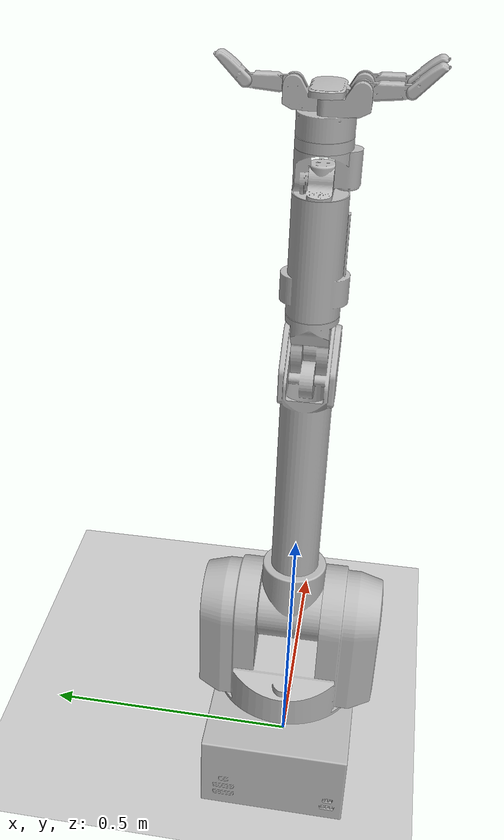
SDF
<sdf version="1.7">
 <world name="default">
  <light name="sun" type="directional">
   <pose>0 0 10 0 -0 0</pose>
   <diffuse>0.8 0.8 0.8 1</diffuse>
   <specular>0.2 0.2 0.2 1</specular>
   <attenuation>
    <range>1000</range>
    <constant>0.9</constant>
    <linear>0.01</linear>
    <quadratic>0.001</quadratic>
   </attenuation>
   <direction>-0.5 0.1 -0.9</direction>
   <spot><inner_angle>0</inner_angle><outer_angle>0</outer_angle><falloff>0</falloff></spot>
  </light>
  <model name="ground_plane">
   <static>1</static>
   <link name="link">
    <collision name="collision">
     <geometry><plane><normal>0 0 1</normal><size>100 100</size></plane></geometry>
     <surface><friction><ode><mu>100</mu><mu2>50</mu2></ode></friction></surface>
    </collision>
    <visual name="visual">
     <cast_shadows>0</cast_shadows>
     <geometry><plane><normal>0 0 1</normal><size>100 100</size></plane></geometry>
     <material>
      <script><uri>file://media/materials/scripts/gazebo.material</uri><name>Gazebo/Grey</name></script>
     </material>
    </visual>
   </link>
  </model>
  <gravity>0 0 -9.8</gravity>
  <magnetic_field>6e-06 2.3e-05 -4.2e-05</magnetic_field>
  <atmosphere type="adiabatic"/>
  <physics type="ode">
   <max_step_size>0.001</max_step_size>
   <real_time_factor>1</real_time_factor>
   <real_time_update_rate>1000</real_time_update_rate>
  </physics>
  <scene><ambient>0.4 0.4 0.4 1</ambient><background>0.7 0.7 0.7 1</background><shadows>1</shadows></scene>
  <spherical_coordinates>
   <surface_model>EARTH_WGS84</surface_model>
   <latitude_deg>0</latitude_deg>
   <longitude_deg>0</longitude_deg>
   <elevation>0</elevation>
   <heading_deg>0</heading_deg>
  </spherical_coordinates>
  <model name="trial0">
   <joint name="wam/wam_fixed_joint" type="fixed">
    <pose relative_to="__model__">0 0 1 0 -0 0</pose>
    <parent>world</parent>
    <child>wam/base_link</child>
   </joint>
   <link name="wam/base_link">
    <pose relative_to="wam/wam_fixed_joint">0 0 0 0 -0 0</pose>
    <inertial>
     <mass>1</mass>
     <inertia><ixx>0.1</ixx><ixy>0</ixy><ixz>0</ixz><iyy>0.1</iyy><iyz>0</iyz><izz>0.1</izz></inertia>
    </inertial>
    <collision name="wam/base_link_collision">
     <geometry>
      <mesh>
       <scale>1 1 1</scale>
       <uri>/home/nckmlb/nuws/src/barrett_ros_arms_test/barrett_model/models/sw_meshes/base_link_convex.dae</uri>
      </mesh>
     </geometry>
    </collision>
    <visual name="wam/base_link_visual">
     <geometry>
      <mesh>
       <scale>1 1 1</scale>
       <uri>/home/nckmlb/nuws/src/barrett_ros_arms_test/barrett_model/models/sw_meshes/base_link_fine.stl</uri>
      </mesh>
     </geometry>
    </visual>
   </link>
   <joint name="wam/base_yaw_joint" type="revolute">
    <pose relative_to="wam/base_link">0 0 0.346 0 -0 0</pose>
    <parent>wam/base_link</parent>
    <child>wam/shoulder_yaw_link</child>
    <axis>
     <xyz>0 0 1</xyz>
     <limit><lower>-2.6</lower><upper>2.6</upper><effort>60</effort><velocity>2</velocity></limit>
     <dynamics>
      <damping>1.98</damping>
      <friction>0</friction>
      <spring_reference>0</spring_reference>
      <spring_stiffness>0</spring_stiffness>
     </dynamics>
    </axis>
    <physics>
     <provide_feedback>1</provide_feedback>
     <ode>
      <implicit_spring_damper>1</implicit_spring_damper>
      <cfm_damping>1</cfm_damping>
      <limit><cfm>0</cfm><erp>0.2</erp></limit>
      <provide_feedback>1</provide_feedback>
     </ode>
    </physics>
   </joint>
   <link name="wam/shoulder_yaw_link">
    <pose relative_to="wam/base_yaw_joint">0 0 0 0 -0 0</pose>
    <inertial>
     <pose>-0.004434 -0.000665 -0.128904 0 -0 0</pose>
     <mass>5</mass>
     <inertia>
      <ixx>0.13488</ixx>
      <ixy>-0.00012485</ixy>
      <ixz>0.00213041</ixz>
      <iyy>0.0904633</iyy>
      <iyz>-0.00068555</iyz>
      <izz>0.113284</izz>
     </inertia>
    </inertial>
    <collision name="wam/shoulder_yaw_link_collision">
     <geometry>
      <mesh>
       <scale>1 1 1</scale>
       <uri>/home/nckmlb/nuws/src/barrett_ros_arms_test/barrett_model/models/sw_meshes/shoulder_link_convex_decomposition.dae</uri>
      </mesh>
     </geometry>
    </collision>
    <visual name="wam/shoulder_yaw_link_visual">
     <geometry>
      <mesh>
       <scale>1 1 1</scale>
       <uri>/home/nckmlb/nuws/src/barrett_ros_arms_test/barrett_model/models/sw_meshes/shoulder_link_fine.stl</uri>
      </mesh>
     </geometry>
    </visual>
   </link>
   <joint name="wam/shoulder_pitch_joint" type="revolute">
    <pose relative_to="wam/shoulder_yaw_link">0 0 0 -1.5708 0 0</pose>
    <parent>wam/shoulder_yaw_link</parent>
    <child>wam/shoulder_pitch_link</child>
    <axis>
     <xyz>0 0 1</xyz>
     <limit><lower>-1.985</lower><upper>1.985</upper><effort>60</effort><velocity>2</velocity></limit>
     <dynamics>
      <damping>0.55</damping>
      <friction>0</friction>
      <spring_reference>0</spring_reference>
      <spring_stiffness>0</spring_stiffness>
     </dynamics>
    </axis>
    <physics>
     <provide_feedback>1</provide_feedback>
     <ode>
      <implicit_spring_damper>1</implicit_spring_damper>
      <cfm_damping>1</cfm_damping>
      <limit><cfm>0</cfm><erp>0.2</erp></limit>
      <provide_feedback>1</provide_feedback>
     </ode>
    </physics>
   </joint>
   <link name="wam/shoulder_pitch_link">
    <pose relative_to="wam/shoulder_pitch_joint">0 0 0 0 -0 0</pose>
    <inertial>
     <pose>-0.00237 -0.015421 0.031056 0 -0 0</pose>
     <mass>3.87494</mass>
     <inertia>
      <ixx>0.0214096</ixx>
      <ixy>-2.461e-05</ixy>
      <ixz>0.00027172</ixz>
      <iyy>0.0155891</iyy>
      <iyz>0.0018192</iyz>
      <izz>0.0137787</izz>
     </inertia>
    </inertial>
    <collision name="wam/shoulder_pitch_link_collision">
     <geometry>
      <mesh>
       <scale>1 1 1</scale>
       <uri>/home/nckmlb/nuws/src/barrett_ros_arms_test/barrett_model/models/sw_meshes/shoulder_pitch_link_convex.dae</uri>
      </mesh>
     </geometry>
    </collision>
    <visual name="wam/shoulder_pitch_link_visual">
     <geometry>
      <mesh>
       <scale>1 1 1</scale>
       <uri>/home/nckmlb/nuws/src/barrett_ros_arms_test/barrett_model/models/sw_meshes/shoulder_pitch_link_fine.stl</uri>
      </mesh>
     </geometry>
    </visual>
   </link>
   <joint name="wam/shoulder_yaw_joint" type="revolute">
    <pose relative_to="wam/shoulder_pitch_link">0 0 0 1.5708 -0 0</pose>
    <parent>wam/shoulder_pitch_link</parent>
    <child>wam/upper_arm_link</child>
    <axis>
     <xyz>0 0 1</xyz>
     <limit><lower>-2.8</lower><upper>2.8</upper><effort>45</effort><velocity>2</velocity></limit>
     <dynamics>
      <damping>1.65</damping>
      <friction>0</friction>
      <spring_reference>0</spring_reference>
      <spring_stiffness>0</spring_stiffness>
     </dynamics>
    </axis>
    <physics>
     <provide_feedback>1</provide_feedback>
     <ode>
      <implicit_spring_damper>1</implicit_spring_damper>
      <cfm_damping>1</cfm_damping>
      <limit><cfm>0</cfm><erp>0.2</erp></limit>
      <provide_feedback>1</provide_feedback>
     </ode>
    </physics>
   </joint>
   <link name="wam/upper_arm_link">
    <pose relative_to="wam/shoulder_yaw_joint">0 0 0 0 -0 0</pose>
    <inertial>
     <pose>0.006833 3.3e-05 0.392492 0 -0 0</pose>
     <mass>2.20228</mass>
     <inertia>
      <ixx>0.0591108</ixx>
      <ixy>-7.38e-06</ixy>
      <ixz>-0.00249612</ixz>
      <iyy>0.0592704</iyy>
      <iyz>1.767e-05</iyz>
      <izz>0.0032455</izz>
     </inertia>
    </inertial>
    <collision name="wam/upper_arm_link_collision">
     <geometry>
      <mesh>
       <scale>1 1 1</scale>
       <uri>/home/nckmlb/nuws/src/barrett_ros_arms_test/barrett_model/models/sw_meshes/upper_arm_link_convex_decomposition.dae</uri>
      </mesh>
     </geometry>
    </collision>
    <visual name="wam/upper_arm_link_visual">
     <geometry>
      <mesh>
       <scale>1 1 1</scale>
       <uri>/home/nckmlb/nuws/src/barrett_ros_arms_test/barrett_model/models/sw_meshes/upper_arm_link_fine.stl</uri>
      </mesh>
     </geometry>
    </visual>
   </link>
   <joint name="wam/elbow_pitch_joint" type="revolute">
    <pose relative_to="wam/upper_arm_link">0.045 0 0.55 -1.5708 0 0</pose>
    <parent>wam/upper_arm_link</parent>
    <child>wam/forearm_link</child>
    <axis>
     <xyz>0 0 1</xyz>
     <limit><lower>-0.9</lower><upper>3.14159</upper><effort>30</effort><velocity>2</velocity></limit>
     <dynamics>
      <damping>0.88</damping>
      <friction>0</friction>
      <spring_reference>0</spring_reference>
      <spring_stiffness>0</spring_stiffness>
     </dynamics>
    </axis>
    <physics>
     <provide_feedback>1</provide_feedback>
     <ode>
      <implicit_spring_damper>1</implicit_spring_damper>
      <cfm_damping>1</cfm_damping>
      <limit><cfm>0</cfm><erp>0.2</erp></limit>
      <provide_feedback>1</provide_feedback>
     </ode>
    </physics>
   </joint>
   <link name="wam/forearm_link">
    <pose relative_to="wam/elbow_pitch_joint">0 0 0 0 -0 0</pose>
    <inertial>
     <pose>-0.040015 -0.142717 -0.000229 0 -0 0</pose>
     <mass>0.500168</mass>
     <inertia>
      <ixx>0.0149167</ixx>
      <ixy>0.00150604</ixy>
      <ixz>1.741e-05</ixz>
      <iyy>0.00294463</iyy>
      <iyz>2.109e-05</iyz>
      <izz>0.0148299</izz>
     </inertia>
    </inertial>
    <collision name="wam/forearm_link_collision">
     <geometry>
      <mesh>
       <scale>1 1 1</scale>
       <uri>/home/nckmlb/nuws/src/barrett_ros_arms_test/barrett_model/models/sw_meshes/elbow_link_convex.dae</uri>
      </mesh>
     </geometry>
    </collision>
    <collision name="wam/forearm_link_collision_1">
     <pose>-0.045 -0.073 0 1.5708 -0 0</pose>
     <geometry>
      <mesh>
       <scale>1 1 1</scale>
       <uri>/home/nckmlb/nuws/src/barrett_ros_arms_test/barrett_model/models/sw_meshes/forearm_link_convex_decomposition.dae</uri>
      </mesh>
     </geometry>
    </collision>
    <visual name="wam/forearm_link_visual">
     <geometry>
      <mesh>
       <scale>1 1 1</scale>
       <uri>/home/nckmlb/nuws/src/barrett_ros_arms_test/barrett_model/models/sw_meshes/elbow_link_fine.stl</uri>
      </mesh>
     </geometry>
    </visual>
    <visual name="wam/forearm_link_visual_1">
     <pose>-0.045 -0.073 0 1.5708 -0 0</pose>
     <geometry>
      <mesh>
       <scale>1 1 1</scale>
       <uri>/home/nckmlb/nuws/src/barrett_ros_arms_test/barrett_model/models/sw_meshes/forearm_link_fine.stl</uri>
      </mesh>
     </geometry>
    </visual>
   </link>
   <joint name="wam/wrist_yaw_joint" type="revolute">
    <pose relative_to="wam/forearm_link">-0.045 -0.3 0 1.5708 -0 0</pose>
    <parent>wam/forearm_link</parent>
    <child>wam/wrist_yaw_link</child>
    <axis>
     <xyz>0 0 1</xyz>
     <limit><lower>-4.55</lower><upper>1.25</upper><effort>10</effort><velocity>2</velocity></limit>
     <dynamics>
      <damping>0.55</damping>
      <friction>0</friction>
      <spring_reference>0</spring_reference>
      <spring_stiffness>0</spring_stiffness>
     </dynamics>
    </axis>
    <physics>
     <provide_feedback>1</provide_feedback>
     <ode>
      <implicit_spring_damper>1</implicit_spring_damper>
      <cfm_damping>1</cfm_damping>
      <limit><cfm>0</cfm><erp>0.2</erp></limit>
      <provide_feedback>1</provide_feedback>
     </ode>
    </physics>
   </joint>
   <link name="wam/wrist_yaw_link">
    <pose relative_to="wam/wrist_yaw_joint">0 0 0 0 -0 0</pose>
    <inertial>
     <pose>8.9e-05 0.004358 -0.005112 0 -0 0</pose>
     <mass>1.05376</mass>
     <inertia>
      <ixx>5.029e-05</ixx>
      <ixy>2e-07</ixy>
      <ixz>7.582e-05</ixz>
      <iyy>7.582e-05</iyy>
      <iyz>-3.59e-06</iyz>
      <izz>6.27e-05</izz>
     </inertia>
    </inertial>
    <collision name="wam/wrist_yaw_link_collision">
     <geometry>
      <mesh>
       <scale>1 1 1</scale>
       <uri>/home/nckmlb/nuws/src/barrett_ros_arms_test/barrett_model/models/sw_meshes/wrist_yaw_link_convex_decomposition.dae</uri>
      </mesh>
     </geometry>
    </collision>
    <visual name="wam/wrist_yaw_link_visual">
     <geometry>
      <mesh>
       <scale>1 1 1</scale>
       <uri>/home/nckmlb/nuws/src/barrett_ros_arms_test/barrett_model/models/sw_meshes/wrist_yaw_link_fine.stl</uri>
      </mesh>
     </geometry>
    </visual>
   </link>
   <joint name="wam/wrist_pitch_joint" type="revolute">
    <pose relative_to="wam/wrist_yaw_link">0 0 0 -1.5708 0 0</pose>
    <parent>wam/wrist_yaw_link</parent>
    <child>wam/wrist_pitch_link</child>
    <axis>
     <xyz>0 0 1</xyz>
     <limit><lower>-1.5707</lower><upper>1.5707</upper><effort>10</effort><velocity>2</velocity></limit>
     <dynamics>
      <damping>0.11</damping>
      <friction>0</friction>
      <spring_reference>0</spring_reference>
      <spring_stiffness>0</spring_stiffness>
     </dynamics>
    </axis>
    <physics>
     <provide_feedback>1</provide_feedback>
     <ode>
      <implicit_spring_damper>1</implicit_spring_damper>
      <cfm_damping>1</cfm_damping>
      <limit><cfm>0</cfm><erp>0.2</erp></limit>
      <provide_feedback>1</provide_feedback>
     </ode>
    </physics>
   </joint>
   <link name="wam/wrist_pitch_link">
    <pose relative_to="wam/wrist_pitch_joint">0 0 0 0 -0 0</pose>
    <inertial>
     <pose>-0.000123 -0.024683 -0.017032 0 -0 0</pose>
     <mass>0.517974</mass>
     <inertia>
      <ixx>0.00055516</ixx>
      <ixy>6.1e-07</ixy>
      <ixz>-7.4e-07</ixz>
      <iyy>0.00024367</iyy>
      <iyz>-4.59e-05</iyz>
      <izz>0.00045358</izz>
     </inertia>
    </inertial>
    <collision name="wam/wrist_pitch_link_collision">
     <geometry>
      <mesh>
       <scale>1 1 1</scale>
       <uri>/home/nckmlb/nuws/src/barrett_ros_arms_test/barrett_model/models/sw_meshes/wrist_pitch_link_convex_decomposition.dae</uri>
      </mesh>
     </geometry>
    </collision>
    <visual name="wam/wrist_pitch_link_visual">
     <geometry>
      <mesh>
       <scale>1 1 1</scale>
       <uri>/home/nckmlb/nuws/src/barrett_ros_arms_test/barrett_model/models/sw_meshes/wrist_pitch_link_fine.stl</uri>
      </mesh>
     </geometry>
    </visual>
   </link>
   <joint name="wam/palm_yaw_joint" type="revolute">
    <pose relative_to="wam/wrist_pitch_link">0 0 0 1.5708 -0 0</pose>
    <parent>wam/wrist_pitch_link</parent>
    <child>wam/wrist_palm_link</child>
    <axis>
     <xyz>0 0 1</xyz>
     <limit><lower>-3</lower><upper>3</upper><effort>10</effort><velocity>2</velocity></limit>
     <dynamics>
      <damping>0.11</damping>
      <friction>0</friction>
      <spring_reference>0</spring_reference>
      <spring_stiffness>0</spring_stiffness>
     </dynamics>
    </axis>
    <physics>
     <provide_feedback>1</provide_feedback>
     <ode>
      <implicit_spring_damper>1</implicit_spring_damper>
      <cfm_damping>1</cfm_damping>
      <limit><cfm>0</cfm><erp>0.2</erp></limit>
      <provide_feedback>1</provide_feedback>
     </ode>
    </physics>
   </joint>
   <link name="wam/wrist_palm_link">
    <pose relative_to="wam/palm_yaw_joint">0 0 0 0 -0 0</pose>
    <inertial>
     <pose>-4.4e-05 0.004333 0.090805 0 -0 0</pose>
     <mass>0.588594</mass>
     <inertia>
      <ixx>0.000274516</ixx>
      <ixy>-3.7692e-08</ixy>
      <ixz>-4.18824e-05</ixz>
      <iyy>0.000556622</iyy>
      <iyz>-1.48293e-05</iyz>
      <izz>0.000312871</izz>
     </inertia>
    </inertial>
    <collision name="wam/wrist_palm_link_collision">
     <geometry>
      <mesh>
       <scale>1 1 1</scale>
       <uri>/home/nckmlb/nuws/src/barrett_ros_arms_test/barrett_model/models/sw_meshes/wrist_palm_link_convex.dae</uri>
      </mesh>
     </geometry>
    </collision>
    <collision name="wam/wrist_palm_link_fixed_joint_lump__wam/bhand/bhand_palm_link_collision_1">
     <pose>0 0 0.06 0 -0 0</pose>
     <geometry>
      <mesh>
       <scale>1 1 1</scale>
       <uri>/home/nckmlb/nuws/src/barrett_ros_arms_test/barrett_model/models/sw_meshes/bhand/bhand_palm_link_convex_decomposition.dae</uri>
      </mesh>
     </geometry>
     <surface><friction><ode><mu>0.8</mu><mu2>0.8</mu2></ode></friction></surface>
    </collision>
    <visual name="wam/wrist_palm_link_visual">
     <geometry>
      <mesh>
       <scale>1 1 1</scale>
       <uri>/home/nckmlb/nuws/src/barrett_ros_arms_test/barrett_model/models/sw_meshes/wrist_palm_link_fine.stl</uri>
      </mesh>
     </geometry>
    </visual>
    <visual name="wam/wrist_palm_link_fixed_joint_lump__wam/bhand/bhand_palm_link_visual_1">
     <pose>0 0 0.06 0 -0 0</pose>
     <geometry>
      <mesh>
       <scale>1 1 1</scale>
       <uri>/home/nckmlb/nuws/src/barrett_ros_arms_test/barrett_model/models/sw_meshes/bhand/bhand_palm_fine.stl</uri>
      </mesh>
     </geometry>
    </visual>
   </link>
   <joint name="wam/bhand/finger_1/prox_joint" type="revolute">
    <pose relative_to="wam/wrist_palm_link">-0.025 0 0.1015 0 0 -1.5708</pose>
    <parent>wam/wrist_palm_link</parent>
    <child>wam/bhand/finger_1/prox_link</child>
    <axis>
     <xyz>0 0 -1</xyz>
     <limit><lower>0</lower><upper>3.14159</upper><effort>5</effort><velocity>5</velocity></limit>
     <dynamics>
      <damping>0.11</damping>
      <friction>0</friction>
      <spring_reference>0</spring_reference>
      <spring_stiffness>0</spring_stiffness>
     </dynamics>
    </axis>
    <physics>
     <provide_feedback>1</provide_feedback>
     <ode>
      <implicit_spring_damper>1</implicit_spring_damper>
      <cfm_damping>1</cfm_damping>
      <limit><cfm>0</cfm><erp>0.2</erp></limit>
      <provide_feedback>1</provide_feedback>
     </ode>
    </physics>
   </joint>
   <link name="wam/bhand/finger_1/prox_link">
    <pose relative_to="wam/bhand/finger_1/prox_joint">0 0 0 0 -0 0</pose>
    <inertial>
     <pose>0.023133 0.000786 0.000528 0 -0 0</pose>
     <mass>0.14109</mass>
     <inertia>
      <ixx>4.872e-06</ixx>
      <ixy>1.7103e-06</ixy>
      <ixz>3.4041e-08</ixz>
      <iyy>7.6588e-05</iyy>
      <iyz>2.3133e-08</iyz>
      <izz>7.7733e-05</izz>
     </inertia>
    </inertial>
    <collision name="wam/bhand/finger_1/prox_link_collision">
     <geometry>
      <mesh>
       <scale>1 1 1</scale>
       <uri>/home/nckmlb/nuws/src/barrett_ros_arms_test/barrett_model/models/sw_meshes/bhand/bhand_finger_prox_link_convex_decomposition.dae</uri>
      </mesh>
     </geometry>
     <surface><friction><ode><mu>0.8</mu><mu2>0.8</mu2></ode></friction></surface>
    </collision>
    <visual name="wam/bhand/finger_1/prox_link_visual">
     <geometry>
      <mesh>
       <scale>1 1 1</scale>
       <uri>/home/nckmlb/nuws/src/barrett_ros_arms_test/barrett_model/models/sw_meshes/bhand/bhand_finger_prox_link_fine.stl</uri>
      </mesh>
     </geometry>
    </visual>
   </link>
   <joint name="wam/bhand/finger_1/med_joint" type="revolute">
    <pose relative_to="wam/bhand/finger_1/prox_link">0.05 0 0.0339 1.5708 -0 0</pose>
    <parent>wam/bhand/finger_1/prox_link</parent>
    <child>wam/bhand/finger_1/med_link</child>
    <axis>
     <xyz>0 0 1</xyz>
     <limit><lower>0</lower><upper>2.44346</upper><effort>5</effort><velocity>5</velocity></limit>
     <dynamics>
      <damping>0.11</damping>
      <friction>0</friction>
      <spring_reference>0</spring_reference>
      <spring_stiffness>0</spring_stiffness>
     </dynamics>
    </axis>
    <physics>
     <provide_feedback>1</provide_feedback>
     <ode>
      <implicit_spring_damper>1</implicit_spring_damper>
      <cfm_damping>1</cfm_damping>
      <limit><cfm>0</cfm><erp>0.2</erp></limit>
      <provide_feedback>1</provide_feedback>
     </ode>
    </physics>
   </joint>
   <link name="wam/bhand/finger_1/med_link">
    <pose relative_to="wam/bhand/finger_1/med_joint">0 0 0 0 -0 0</pose>
    <inertial>
     <pose>0.023133 0.000786 0.000528 0 -0 0</pose>
     <mass>0.062139</mass>
     <inertia>
      <ixx>4.872e-06</ixx>
      <ixy>1.7103e-06</ixy>
      <ixz>3.4041e-08</ixz>
      <iyy>7.6588e-05</iyy>
      <iyz>2.3133e-08</iyz>
      <izz>7.7733e-05</izz>
     </inertia>
    </inertial>
    <collision name="wam/bhand/finger_1/med_link_collision">
     <geometry>
      <mesh>
       <scale>1 1 1</scale>
       <uri>/home/nckmlb/nuws/src/barrett_ros_arms_test/barrett_model/models/sw_meshes/bhand/bhand_finger_med_link_convex.dae</uri>
      </mesh>
     </geometry>
     <surface><friction><ode><mu>0.8</mu><mu2>0.8</mu2></ode></friction></surface>
    </collision>
    <visual name="wam/bhand/finger_1/med_link_visual">
     <geometry>
      <mesh>
       <scale>1 1 1</scale>
       <uri>/home/nckmlb/nuws/src/barrett_ros_arms_test/barrett_model/models/sw_meshes/bhand/bhand_finger_med_link_fine.stl</uri>
      </mesh>
     </geometry>
    </visual>
   </link>
   <joint name="wam/bhand/finger_1/dist_joint" type="revolute">
    <pose relative_to="wam/bhand/finger_1/med_link">0.06994 0.003 0 0 -0 0.785398</pose>
    <parent>wam/bhand/finger_1/med_link</parent>
    <child>wam/bhand/finger_1/dist_link</child>
    <axis>
     <xyz>0 0 1</xyz>
     <limit><lower>0</lower><upper>0.837758</upper><effort>5</effort><velocity>5</velocity></limit>
     <dynamics>
      <damping>0.11</damping>
      <friction>0</friction>
      <spring_reference>0</spring_reference>
      <spring_stiffness>0</spring_stiffness>
     </dynamics>
    </axis>
    <physics>
     <provide_feedback>1</provide_feedback>
     <ode>
      <implicit_spring_damper>1</implicit_spring_damper>
      <cfm_damping>1</cfm_damping>
      <limit><cfm>0</cfm><erp>0.2</erp></limit>
      <provide_feedback>1</provide_feedback>
     </ode>
    </physics>
   </joint>
   <link name="wam/bhand/finger_1/dist_link">
    <pose relative_to="wam/bhand/finger_1/dist_joint">0 0 0 0 -0 0</pose>
    <inertial>
     <pose>0.022826 0.001049 0.00042 0 -0 0</pose>
     <mass>0.041378</mass>
     <inertia>
      <ixx>4.1582e-06</ixx>
      <ixy>1.43083e-06</ixy>
      <ixz>1.01071e-07</ixz>
      <iyy>3.93767e-05</iyy>
      <iyz>-4.40926e-13</iyz>
      <izz>3.82757e-05</izz>
     </inertia>
    </inertial>
    <collision name="wam/bhand/finger_1/dist_link_collision">
     <pose>0 0 0 0 0 -0.785398</pose>
     <geometry>
      <mesh>
       <scale>1 1 1</scale>
       <uri>/home/nckmlb/nuws/src/barrett_ros_arms_test/barrett_model/models/sw_meshes/bhand/bhand_finger_dist_link_convex.dae</uri>
      </mesh>
     </geometry>
     <surface><friction><ode><mu>0.8</mu><mu2>0.8</mu2></ode></friction></surface>
    </collision>
    <visual name="wam/bhand/finger_1/dist_link_visual">
     <pose>0 0 0 0 0 -0.785398</pose>
     <geometry>
      <mesh>
       <scale>1 1 1</scale>
       <uri>/home/nckmlb/nuws/src/barrett_ros_arms_test/barrett_model/models/sw_meshes/bhand/bhand_finger_dist_link_fine.stl</uri>
      </mesh>
     </geometry>
    </visual>
    <self_collide>1</self_collide>
   </link>
   <joint name="wam/bhand/finger_2/prox_joint" type="revolute">
    <pose relative_to="wam/wrist_palm_link">0.025 0 0.1015 0 0 -1.5708</pose>
    <parent>wam/wrist_palm_link</parent>
    <child>wam/bhand/finger_2/prox_link</child>
    <axis>
     <xyz>0 0 1</xyz>
     <limit><lower>0</lower><upper>3.14159</upper><effort>5</effort><velocity>5</velocity></limit>
     <dynamics>
      <damping>0.11</damping>
      <friction>0</friction>
      <spring_reference>0</spring_reference>
      <spring_stiffness>0</spring_stiffness>
     </dynamics>
    </axis>
    <physics>
     <provide_feedback>1</provide_feedback>
     <ode>
      <implicit_spring_damper>1</implicit_spring_damper>
      <cfm_damping>1</cfm_damping>
      <limit><cfm>0</cfm><erp>0.2</erp></limit>
      <provide_feedback>1</provide_feedback>
     </ode>
    </physics>
   </joint>
   <link name="wam/bhand/finger_2/prox_link">
    <pose relative_to="wam/bhand/finger_2/prox_joint">0 0 0 0 -0 0</pose>
    <inertial>
     <pose>0.023133 0.000786 0.000528 0 -0 0</pose>
     <mass>0.14109</mass>
     <inertia>
      <ixx>4.872e-06</ixx>
      <ixy>1.7103e-06</ixy>
      <ixz>3.4041e-08</ixz>
      <iyy>7.6588e-05</iyy>
      <iyz>2.3133e-08</iyz>
      <izz>7.7733e-05</izz>
     </inertia>
    </inertial>
    <collision name="wam/bhand/finger_2/prox_link_collision">
     <geometry>
      <mesh>
       <scale>1 1 1</scale>
       <uri>/home/nckmlb/nuws/src/barrett_ros_arms_test/barrett_model/models/sw_meshes/bhand/bhand_finger_prox_link_convex_decomposition.dae</uri>
      </mesh>
     </geometry>
     <surface><friction><ode><mu>0.8</mu><mu2>0.8</mu2></ode></friction></surface>
    </collision>
    <visual name="wam/bhand/finger_2/prox_link_visual">
     <geometry>
      <mesh>
       <scale>1 1 1</scale>
       <uri>/home/nckmlb/nuws/src/barrett_ros_arms_test/barrett_model/models/sw_meshes/bhand/bhand_finger_prox_link_fine.stl</uri>
      </mesh>
     </geometry>
    </visual>
   </link>
   <joint name="wam/bhand/finger_2/med_joint" type="revolute">
    <pose relative_to="wam/bhand/finger_2/prox_link">0.05 0 0.0339 1.5708 -0 0</pose>
    <parent>wam/bhand/finger_2/prox_link</parent>
    <child>wam/bhand/finger_2/med_link</child>
    <axis>
     <xyz>0 0 1</xyz>
     <limit><lower>0</lower><upper>2.44346</upper><effort>5</effort><velocity>5</velocity></limit>
     <dynamics>
      <damping>0.11</damping>
      <friction>0</friction>
      <spring_reference>0</spring_reference>
      <spring_stiffness>0</spring_stiffness>
     </dynamics>
    </axis>
    <physics>
     <provide_feedback>1</provide_feedback>
     <ode>
      <implicit_spring_damper>1</implicit_spring_damper>
      <cfm_damping>1</cfm_damping>
      <limit><cfm>0</cfm><erp>0.2</erp></limit>
      <provide_feedback>1</provide_feedback>
     </ode>
    </physics>
   </joint>
   <link name="wam/bhand/finger_2/med_link">
    <pose relative_to="wam/bhand/finger_2/med_joint">0 0 0 0 -0 0</pose>
    <inertial>
     <pose>0.023133 0.000786 0.000528 0 -0 0</pose>
     <mass>0.062139</mass>
     <inertia>
      <ixx>4.872e-06</ixx>
      <ixy>1.7103e-06</ixy>
      <ixz>3.4041e-08</ixz>
      <iyy>7.6588e-05</iyy>
      <iyz>2.3133e-08</iyz>
      <izz>7.7733e-05</izz>
     </inertia>
    </inertial>
    <collision name="wam/bhand/finger_2/med_link_collision">
     <geometry>
      <mesh>
       <scale>1 1 1</scale>
       <uri>/home/nckmlb/nuws/src/barrett_ros_arms_test/barrett_model/models/sw_meshes/bhand/bhand_finger_med_link_convex.dae</uri>
      </mesh>
     </geometry>
     <surface><friction><ode><mu>0.8</mu><mu2>0.8</mu2></ode></friction></surface>
    </collision>
    <visual name="wam/bhand/finger_2/med_link_visual">
     <geometry>
      <mesh>
       <scale>1 1 1</scale>
       <uri>/home/nckmlb/nuws/src/barrett_ros_arms_test/barrett_model/models/sw_meshes/bhand/bhand_finger_med_link_fine.stl</uri>
      </mesh>
     </geometry>
    </visual>
   </link>
   <joint name="wam/bhand/finger_2/dist_joint" type="revolute">
    <pose relative_to="wam/bhand/finger_2/med_link">0.06994 0.003 0 0 -0 0.785398</pose>
    <parent>wam/bhand/finger_2/med_link</parent>
    <child>wam/bhand/finger_2/dist_link</child>
    <axis>
     <xyz>0 0 1</xyz>
     <limit><lower>0</lower><upper>0.837758</upper><effort>5</effort><velocity>5</velocity></limit>
     <dynamics>
      <damping>0.11</damping>
      <friction>0</friction>
      <spring_reference>0</spring_reference>
      <spring_stiffness>0</spring_stiffness>
     </dynamics>
    </axis>
    <physics>
     <provide_feedback>1</provide_feedback>
     <ode>
      <implicit_spring_damper>1</implicit_spring_damper>
      <cfm_damping>1</cfm_damping>
      <limit><cfm>0</cfm><erp>0.2</erp></limit>
      <provide_feedback>1</provide_feedback>
     </ode>
    </physics>
   </joint>
   <link name="wam/bhand/finger_2/dist_link">
    <pose relative_to="wam/bhand/finger_2/dist_joint">0 0 0 0 -0 0</pose>
    <inertial>
     <pose>0.022826 0.001049 0.00042 0 -0 0</pose>
     <mass>0.041378</mass>
     <inertia>
      <ixx>4.1582e-06</ixx>
      <ixy>1.43083e-06</ixy>
      <ixz>1.01071e-07</ixz>
      <iyy>3.93767e-05</iyy>
      <iyz>-4.40926e-13</iyz>
      <izz>3.82757e-05</izz>
     </inertia>
    </inertial>
    <collision name="wam/bhand/finger_2/dist_link_collision">
     <pose>0 0 0 0 0 -0.785398</pose>
     <geometry>
      <mesh>
       <scale>1 1 1</scale>
       <uri>/home/nckmlb/nuws/src/barrett_ros_arms_test/barrett_model/models/sw_meshes/bhand/bhand_finger_dist_link_convex.dae</uri>
      </mesh>
     </geometry>
     <surface><friction><ode><mu>0.8</mu><mu2>0.8</mu2></ode></friction></surface>
    </collision>
    <visual name="wam/bhand/finger_2/dist_link_visual">
     <pose>0 0 0 0 0 -0.785398</pose>
     <geometry>
      <mesh>
       <scale>1 1 1</scale>
       <uri>/home/nckmlb/nuws/src/barrett_ros_arms_test/barrett_model/models/sw_meshes/bhand/bhand_finger_dist_link_fine.stl</uri>
      </mesh>
     </geometry>
    </visual>
    <self_collide>1</self_collide>
   </link>
   <joint name="wam/bhand/finger_3/med_joint" type="revolute">
    <pose relative_to="wam/wrist_palm_link">0 0.05 0.1354 1.5708 -0 1.5708</pose>
    <parent>wam/wrist_palm_link</parent>
    <child>wam/bhand/finger_3/med_link</child>
    <axis>
     <xyz>0 0 1</xyz>
     <limit><lower>0</lower><upper>2.44346</upper><effort>5</effort><velocity>5</velocity></limit>
     <dynamics>
      <damping>0.11</damping>
      <friction>0</friction>
      <spring_reference>0</spring_reference>
      <spring_stiffness>0</spring_stiffness>
     </dynamics>
    </axis>
    <physics>
     <provide_feedback>1</provide_feedback>
     <ode>
      <implicit_spring_damper>1</implicit_spring_damper>
      <cfm_damping>1</cfm_damping>
      <limit><cfm>0</cfm><erp>0.2</erp></limit>
      <provide_feedback>1</provide_feedback>
     </ode>
    </physics>
   </joint>
   <link name="wam/bhand/finger_3/med_link">
    <pose relative_to="wam/bhand/finger_3/med_joint">0 0 0 0 -0 0</pose>
    <inertial>
     <pose>0.023133 0.000786 0.000528 0 -0 0</pose>
     <mass>0.062139</mass>
     <inertia>
      <ixx>4.872e-06</ixx>
      <ixy>1.7103e-06</ixy>
      <ixz>3.4041e-08</ixz>
      <iyy>7.6588e-05</iyy>
      <iyz>2.3133e-08</iyz>
      <izz>7.7733e-05</izz>
     </inertia>
    </inertial>
    <collision name="wam/bhand/finger_3/med_link_collision">
     <geometry>
      <mesh>
       <scale>1 1 1</scale>
       <uri>/home/nckmlb/nuws/src/barrett_ros_arms_test/barrett_model/models/sw_meshes/bhand/bhand_finger_med_link_convex.dae</uri>
      </mesh>
     </geometry>
     <surface><friction><ode><mu>0.8</mu><mu2>0.8</mu2></ode></friction></surface>
    </collision>
    <visual name="wam/bhand/finger_3/med_link_visual">
     <geometry>
      <mesh>
       <scale>1 1 1</scale>
       <uri>/home/nckmlb/nuws/src/barrett_ros_arms_test/barrett_model/models/sw_meshes/bhand/bhand_finger_med_link_fine.stl</uri>
      </mesh>
     </geometry>
    </visual>
   </link>
   <joint name="wam/bhand/finger_3/dist_joint" type="revolute">
    <pose relative_to="wam/bhand/finger_3/med_link">0.06994 0.003 0 0 -0 0.785398</pose>
    <parent>wam/bhand/finger_3/med_link</parent>
    <child>wam/bhand/finger_3/dist_link</child>
    <axis>
     <xyz>0 0 1</xyz>
     <limit><lower>0</lower><upper>0.837758</upper><effort>5</effort><velocity>5</velocity></limit>
     <dynamics>
      <damping>0.11</damping>
      <friction>0</friction>
      <spring_reference>0</spring_reference>
      <spring_stiffness>0</spring_stiffness>
     </dynamics>
    </axis>
    <physics>
     <provide_feedback>1</provide_feedback>
     <ode>
      <implicit_spring_damper>1</implicit_spring_damper>
      <cfm_damping>1</cfm_damping>
      <limit><cfm>0</cfm><erp>0.2</erp></limit>
      <provide_feedback>1</provide_feedback>
     </ode>
    </physics>
   </joint>
   <link name="wam/bhand/finger_3/dist_link">
    <pose relative_to="wam/bhand/finger_3/dist_joint">0 0 0 0 -0 0</pose>
    <inertial>
     <pose>0.022826 0.001049 0.00042 0 -0 0</pose>
     <mass>0.041378</mass>
     <inertia>
      <ixx>4.1582e-06</ixx>
      <ixy>1.43083e-06</ixy>
      <ixz>1.01071e-07</ixz>
      <iyy>3.93767e-05</iyy>
      <iyz>-4.40926e-13</iyz>
      <izz>3.82757e-05</izz>
     </inertia>
    </inertial>
    <collision name="wam/bhand/finger_3/dist_link_collision">
     <pose>0 0 0 0 0 -0.785398</pose>
     <geometry>
      <mesh>
       <scale>1 1 1</scale>
       <uri>/home/nckmlb/nuws/src/barrett_ros_arms_test/barrett_model/models/sw_meshes/bhand/bhand_finger_dist_link_convex.dae</uri>
      </mesh>
     </geometry>
     <surface><friction><ode><mu>0.8</mu><mu2>0.8</mu2></ode></friction></surface>
    </collision>
    <visual name="wam/bhand/finger_3/dist_link_visual">
     <pose>0 0 0 0 0 -0.785398</pose>
     <geometry>
      <mesh>
       <scale>1 1 1</scale>
       <uri>/home/nckmlb/nuws/src/barrett_ros_arms_test/barrett_model/models/sw_meshes/bhand/bhand_finger_dist_link_fine.stl</uri>
      </mesh>
     </geometry>
    </visual>
    <self_collide>1</self_collide>
   </link>
   <pose>0 0 -1 0 -0 0</pose>
  </model>
 </world>
</sdf>
